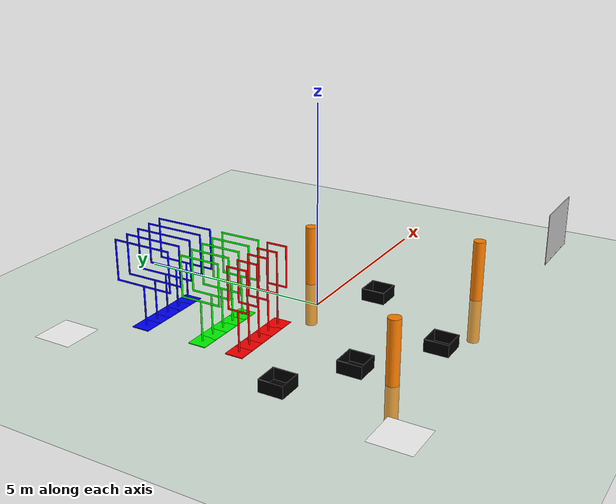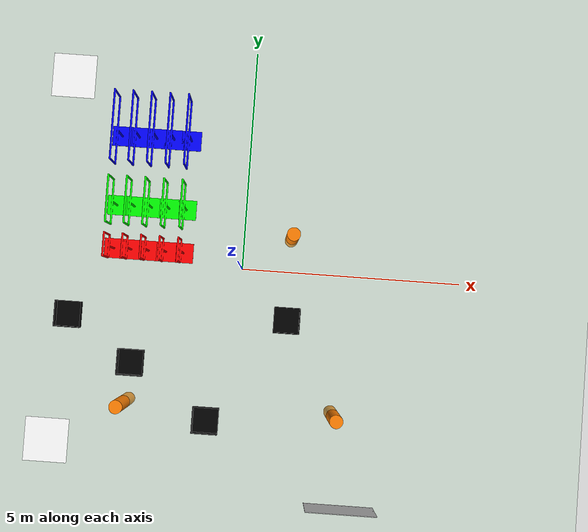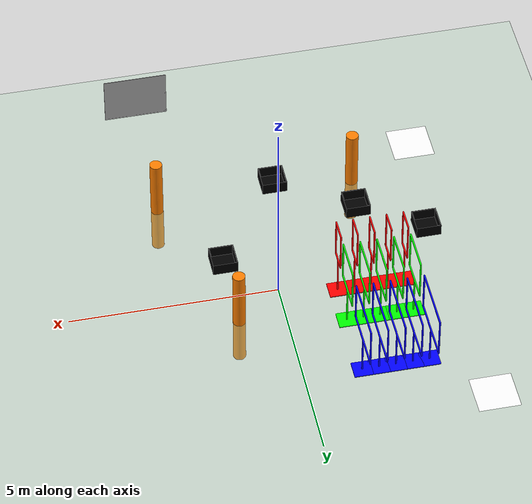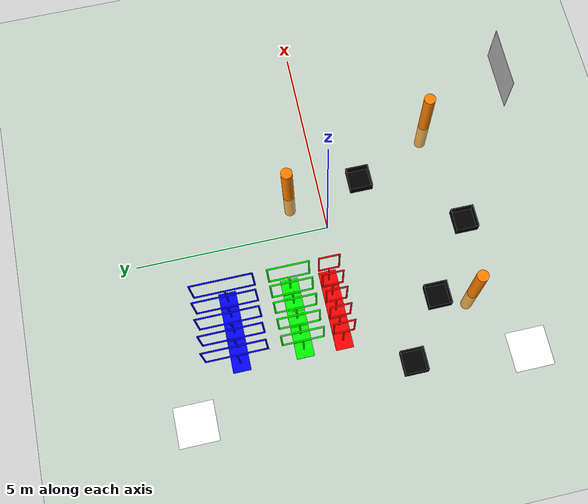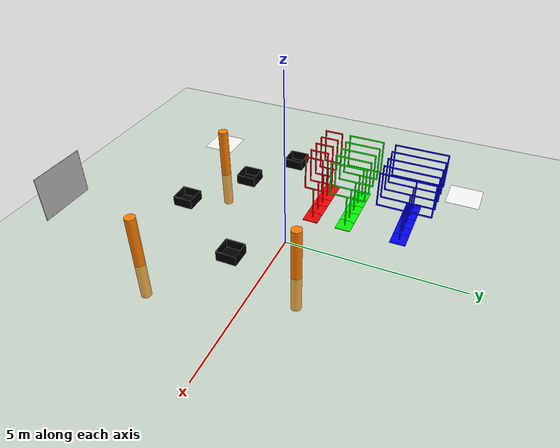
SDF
<sdf version="1.9">
 <world name="tmr26">
  <physics name="physics" type="ode">
   <max_step_size>0.004</max_step_size>
   <real_time_factor>1.0</real_time_factor>
   <real_time_update_rate>250</real_time_update_rate>
  </physics>
  <plugin name="gz::sim::systems::Physics" filename="gz-sim-physics-system"/>
  <plugin name="gz::sim::systems::UserCommands" filename="gz-sim-user-commands-system"/>
  <plugin name="gz::sim::systems::SceneBroadcaster" filename="gz-sim-scene-broadcaster-system"/>
  <plugin name="gz::sim::systems::Contact" filename="gz-sim-contact-system"/>
  <plugin name="gz::sim::systems::Imu" filename="gz-sim-imu-system"/>
  <plugin name="gz::sim::systems::AirPressure" filename="gz-sim-air-pressure-system"/>
  <plugin name="gz::sim::systems::AirSpeed" filename="gz-sim-air-speed-system"/>
  <plugin name="gz::sim::systems::ApplyLinkWrench" filename="gz-sim-apply-link-wrench-system"/>
  <plugin name="gz::sim::systems::NavSat" filename="gz-sim-navsat-system"/>
  <plugin name="gz::sim::systems::Sensors" filename="gz-sim-sensors-system">
   <render_engine>ogre2</render_engine>
  </plugin>
  <gravity>0 0 -9.81</gravity>
  <magnetic_field>6e-06 2.3e-05 -4.2e-05</magnetic_field>
  <atmosphere type="adiabatic"/>
  <scene>
   <grid>false</grid>
   <ambient>0.6 0.6 0.6 1</ambient>
   <background>0.85 0.85 0.85 1</background>
   <shadows>true</shadows>
  </scene>
  <spherical_coordinates>
   <surface_model>EARTH_WGS84</surface_model>
   <world_frame_orientation>ENU</world_frame_orientation>
   <latitude_deg>47.397971057728974</latitude_deg>
   <longitude_deg>8.5461637398001464</longitude_deg>
   <elevation>0</elevation>
   <heading_deg>0</heading_deg>
  </spherical_coordinates>
  <light name="sunUTC" type="directional">
   <pose>0 0 500 0 0 0</pose>
   <intensity>1</intensity>
   <direction>0.001 0.625 -0.78</direction>
   <diffuse>0.904 0.904 0.904 1</diffuse>
   <specular>0.271 0.271 0.271 1</specular>
   <attenuation><range>2000</range><linear>0</linear><constant>1</constant><quadratic>0</quadratic></attenuation>
   <spot><inner_angle>0</inner_angle><outer_angle>0</outer_angle><falloff>0</falloff></spot>
  </light>
  <model name="ground_plane">
   <static>true</static>
   <link name="link">
    <collision name="collision">
     <geometry><plane><normal>0 0 1</normal><size>1 1</size></plane></geometry>
    </collision>
    <visual name="visual">
     <geometry><plane><normal>0 0 1</normal><size>10 10</size></plane></geometry>
     <material>
      <ambient>0.72 0.90 0.75 1</ambient>
      <diffuse>0.72 0.90 0.75 1</diffuse>
      <specular>0.05 0.05 0.05 1</specular>
     </material>
    </visual>
    <inertial>
     <mass>1</mass>
     <inertia><ixx>1</ixx><ixy>0</ixy><ixz>0</ixz><iyy>1</iyy><iyz>0</iyz><izz>1</izz></inertia>
    </inertial>
   </link>
  </model>
  <include>
   <uri>model://LandingZone</uri>
   <name>TakeoffZone</name>
   <pose>-4.2 4.2 0.002 0 0 1.5708</pose>
  </include>
  <include>
   <uri>model://LandingZone</uri>
   <name>LandingZone_2</name>
   <pose>-4.2 -4.2 0.002 0 0 1.5708</pose>
  </include>
  <model name="tubo">
   <static>true</static>
   <pose>1.3 -3.2 0   0 0 0</pose>
   <include><name>t1</name><uri>model://tubo</uri><pose>-0.2 4 0.175   0 0 0</pose></include>
   <include><name>t2</name><uri>model://tubo</uri><pose>-3.8 -0.02 0.175   0 0 0</pose></include>
   <include><name>t3</name><uri>model://tubo</uri><pose>1 0 0.175   0 0 0</pose></include>
  </model>
  <model name="MedKitBox">
   <static>true</static>
   <pose>1.3 -3.2 0 1.5708 0 0</pose>
   <include><name>c1</name><uri>model://MedKitBox</uri><pose>-5.5 0 -2.2   0 0 0</pose></include>
   <include><name>c2</name><uri>model://MedKitBox</uri><pose>-0.5 0 -2.4 0 0 0</pose></include>
   <include><name>c3</name><uri>model://MedKitBox</uri><pose>-4 0 -1.2 0 0 0</pose></include>
   <include><name>c4</name><uri>model://MedKitBox</uri><pose>-2.2 0 0 0 0 0</pose></include>
  </model>
  <include>
   <uri>model://WhiteBoard</uri>
   <name>WhiteBoard_1</name>
   <pose>3.2 -5 1.5 1.5708 0 3.1416</pose>
  </include>
  <model name="gate_large_blue">
   <static>true</static>
   <pose>-3.2 2.1 0 1.5708 0 1.5708</pose>
   <include><name>b1</name><uri>model://1.5window</uri></include>
   <include><name>b2</name><uri>model://1.5window</uri><pose>0 0 0.4 0 0 0</pose></include>
   <include><name>b3</name><uri>model://1.5window</uri><pose>0 0 0.8 0 0 0</pose></include>
   <include><name>b4</name><uri>model://1.5window</uri><pose>0 0 1.2 0 0 0</pose></include>
   <include><name>b5</name><uri>model://1.5window</uri><pose>0 0 1.6 0 0 0</pose></include>
  </model>
  <model name="gate_medium_green">
   <static>true</static>
   <pose>-3.2 0.75 0 1.5708 0 1.5708</pose>
   <include><name>g1</name><uri>model://1.0window</uri></include>
   <include><name>g2</name><uri>model://1.0window</uri><pose>0 0 0.4 0 0 0</pose></include>
   <include><name>g3</name><uri>model://1.0window</uri><pose>0 0 0.8 0 0 0</pose></include>
   <include><name>g4</name><uri>model://1.0window</uri><pose>0 0 1.2 0 0 0</pose></include>
   <include><name>g5</name><uri>model://1.0window</uri><pose>0 0 1.6 0 0 0</pose></include>
  </model>
  <model name="gate_small_red">
   <static>true</static>
   <pose>-3.2 0.006 0 1.5708 0 1.5708</pose>
   <include><name>r1</name><uri>model://0.5window</uri></include>
   <include><name>r2</name><uri>model://0.5window</uri><pose>0 0 0.4 0 0 0</pose></include>
   <include><name>r3</name><uri>model://0.5window</uri><pose>0 0 0.8 0 0 0</pose></include>
   <include><name>r4</name><uri>model://0.5window</uri><pose>0 0 1.2 0 0 0</pose></include>
   <include><name>r5</name><uri>model://0.5window</uri><pose>0 0 1.6 0 0 0</pose></include>
  </model>
  <model name="overhead_cam">
   <static>true</static>
   <pose>0 0 8 0 1.5708 0</pose>
   <link name="cam_link">
    <sensor name="camera" type="camera">
     <always_on>true</always_on>
     <update_rate>30</update_rate>
     <visualize>false</visualize>
     <topic>/overhead_camera/image_raw</topic>
     <camera>
      <horizontal_fov>1.047</horizontal_fov>
      <image><width>1280</width><height>720</height><format>R8G8B8</format></image>
      <clip><near>0.1</near><far>50</far></clip>
     </camera>
    </sensor>
   </link>
  </model>
 </world>
</sdf>

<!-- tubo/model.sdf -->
<sdf version="1.9">
  <model name="tubo">
    <static>true</static>
    <link name="link">
      <collision name="collision">
        <geometry>
          <cylinder>
            <radius>0.15</radius>
            <length>2.7</length>
          </cylinder>
        </geometry>
      </collision>
      <visual name="visual">
        <geometry>
          <cylinder>
            <radius>0.15</radius>
            <length>2.7</length>
          </cylinder>
        </geometry>
        <material>
          <ambient>1.0 0.5 0.0 1</ambient>
          <diffuse>1.0 0.5 0.0 1</diffuse>
          <specular>0.2 0.1 0.0 1</specular>
        </material>
      </visual>
    </link>
  </model>
</sdf>

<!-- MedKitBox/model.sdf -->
<sdf version="1.9">
  <model name="MedKitBox">
    <static>true</static>
    <link name="link">
      <collision name="collision">
        <geometry>
          <mesh>
            <uri>model://MedKitBox/meshes/MedKitBox.dae</uri>
            <scale>0.001 0.001 0.001</scale>
          </mesh>
        </geometry>
      </collision>

      <visual name="visual">
        <geometry>
          <mesh>
            <uri>model://MedKitBox/meshes/MedKitBox.dae</uri>
            <scale>0.001 0.001 0.001</scale>
          </mesh>
        </geometry>
        <material>
          <ambient>0 0 0 1</ambient>
          <diffuse>0 0 0 1</diffuse>
          <specular>0 0 0 1</specular>
          <emissive>0 0 0 1</emissive>
        </material>
      </visual>

    </link>
  </model>
</sdf>

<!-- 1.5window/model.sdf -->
<sdf version="1.9">
  <model name="1.5window">
    <static>true</static>
    <link name="link">

      <collision name="collision">
        <geometry>
          <mesh>
            <uri>model://1.5window/meshes/1.5tunnel.dae</uri>
            <scale>0.001 0.001 0.001</scale>
          </mesh>
        </geometry>
      </collision>

      <visual name="visual">
        <geometry>
          <mesh>
            <uri>model://1.5window/meshes/1.5tunnel.dae</uri>
            <scale>0.001 0.001 0.001</scale>
          </mesh>
        </geometry>
        <material>
          <ambient>0 0 1 1</ambient>
          <diffuse>0 0 1 1</diffuse>
          <specular>0.1 0.1 0.1 1</specular>
        </material>
      </visual>
    </link>
  </model>
</sdf>

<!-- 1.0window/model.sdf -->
<sdf version="1.9">
  <model name="1.0window">
    <static>true</static>
    <link name="link">
      <collision name="collision">
        <geometry>
          <mesh>
            <uri>model://1.0window/meshes/1.0tunnel.dae</uri>
            <scale>0.001 0.001 0.001</scale>
          </mesh>
        </geometry>
      </collision>

      <visual name="visual">
        <geometry>
          <mesh>
            <uri>model://1.0window/meshes/1.0tunnel.dae</uri>
            <scale>0.001 0.001 0.001</scale>
          </mesh>
        </geometry>
        <material>
          <ambient>0 1 0 1</ambient>
          <diffuse>0 1 0 1</diffuse>
          <specular>0.1 0.1 0.1 1</specular>
        </material>
      </visual>
    </link>
  </model>
</sdf>

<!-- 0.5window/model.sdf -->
<sdf version="1.9">
  <model name="0.5window">
    <static>true</static>
    <link name="link">
      <collision name="collision">
        <geometry>
          <mesh>
            <uri>model://0.5window/meshes/0.5mtunnel.dae</uri>
            <scale>0.001 0.001 0.001</scale>
          </mesh>
        </geometry>
      </collision>

      <visual name="visual">
        <geometry>
          <mesh>
            <uri>model://0.5window/meshes/0.5mtunnel.dae</uri>
            <scale>0.001 0.001 0.001</scale>
          </mesh>
        </geometry>
        <material>
          <ambient>1 0 0 1</ambient>
          <diffuse>1 0 0 1</diffuse>
          <specular>0.1 0.1 0.1 1</specular>
        </material>
      </visual>
    </link>
  </model>
</sdf>

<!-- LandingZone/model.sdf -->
<sdf version="1.9">
  <model name="LandingZone">
    <static>true</static>

    <link name="link">
      <visual name="visual">
        <!-- Evita que el helipad se vea gris por sombras -->
        <cast_shadows>false</cast_shadows>

        <geometry>
          <mesh>
            <uri>model://LandingZone/meshes/helipad.dae</uri>
            <scale>1 1 1</scale>
          </mesh>
        </geometry>

        <material>
          <diffuse>1 1 1 1</diffuse>
          <specular>0 0 0 1</specular>

          <pbr>
            <metal>
              <albedo_map>model://LandingZone/meshes/helipad.png</albedo_map>
            </metal>
          </pbr>
        </material>
      </visual>
    </link>
  </model>
</sdf>

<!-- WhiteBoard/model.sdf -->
<sdf version="1.9">
  <model name="WhiteBoard">
    <static>true</static>
    <link name="link">
      <collision name="collision">
        <geometry>
          <mesh>
            <uri>model://WhiteBoard/meshes/Whiteboard.dae</uri>
            <scale>0.001 0.001 0.001</scale>
          </mesh>
        </geometry>
      </collision>
      <visual name="visual">
        <geometry>
          <mesh>
            <uri>model://WhiteBoard/meshes/Whiteboard.dae</uri>
            <scale>0.001 0.001 0.001</scale>
          </mesh>
        </geometry>
      </visual>
    </link>
  </model>
</sdf>
